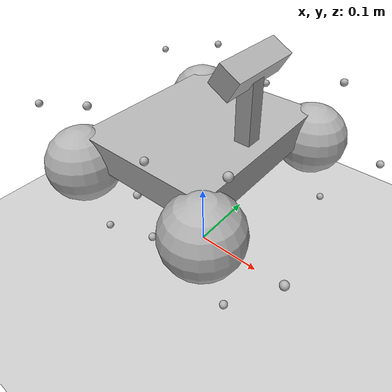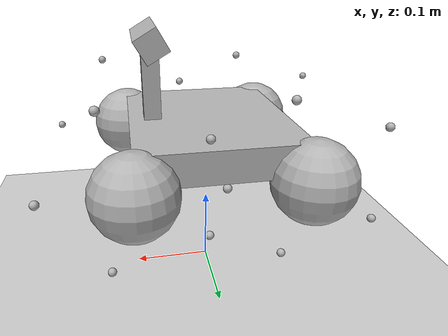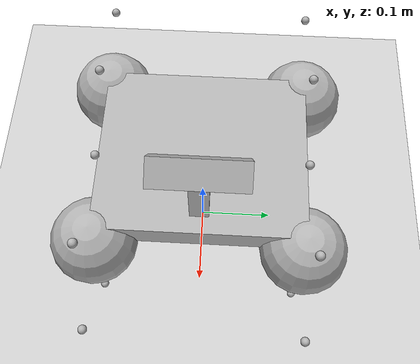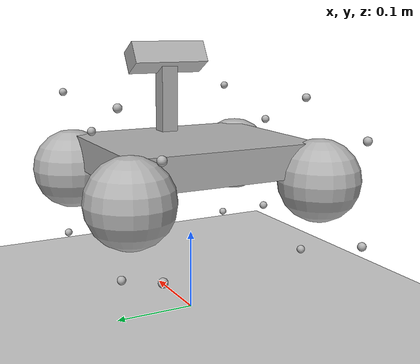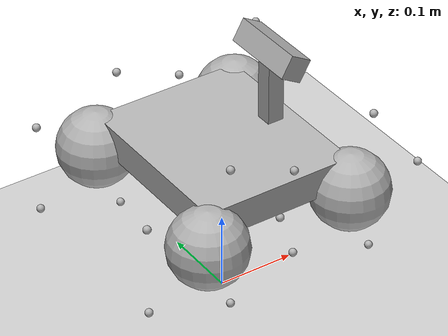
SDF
<sdf version='1.6'>
  <world name='default'>

    <gui>
      <plugin name="keyboard" filename="libKeyboardGUIPlugin-FIXED.so"/>
    </gui>

    <include>
      <uri>model://ground_plane</uri>
    </include>

    <include>
      <uri>model://sun</uri>
    </include>

    <include>
      <uri>model://ugv</uri>
      <pose>0 0 0.2 0 0 0</pose>
    </include>

    <gravity>0 0 -9.8</gravity>

    <physics name='default_physics' default='0' type='ode'>
      <max_step_size>0.001</max_step_size>
      <real_time_factor>1</real_time_factor>
      <real_time_update_rate>1000</real_time_update_rate>
    </physics>

    <gui fullscreen='0'>
      <camera name='user_camera'>
        <pose frame=''>5 -5 2 0 0.275643 2.35619</pose>
        <view_controller>orbit</view_controller>
        <projection_type>perspective</projection_type>
      </camera>
    </gui>

  </world>
</sdf>

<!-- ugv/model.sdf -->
<sdf version='1.6'>
  <model name='ugv'>

    <plugin name="controller" filename="libfsm_controller.so"/>

    <link name='chassis'>

      <pose frame=''>0 0 0 0 -0 0</pose>

      <inertial>
        <mass>0.71616</mass>
        <inertia>
          <ixx>0.003533056</ixx>
          <ixy>0</ixy>
          <ixz>0</ixz>
          <iyy>0.0024826880000000003</iyy>
          <iyz>0</iyz>
          <izz>0.005824768000000001</izz>
        </inertia>
      </inertial>

      <visual name='visual'>
        <geometry>
          <box>
            <size>0.2 0.24 0.04</size>
          </box>
        </geometry>
        <material>
          <ambient>0.3 0.3 0.3 1</ambient>
          <diffuse>0.7 0.7 0.7 1</diffuse>
          <specular>0.01 0.01 0.01 1</specular>
          <emissive>0 0 0 1</emissive>
        </material>
        <transparency>0</transparency>
      </visual>

      <collision name='collision'>
        <geometry>
          <box>
            <size>0.2 0.24 0.04</size>
          </box>
        </geometry>
      </collision>

      <sensor name='stereo_camera' type='multicamera'>

        <pose>0.07 0 0.115 0 0.5235987755982988 0</pose>

        <always_on>1</always_on>
        <update_rate>10</update_rate>

        <camera name="left">
          <save enabled="true">
            <path>/tmp/grass/low/left</path>
          </save>
          <horizontal_fov>1.047</horizontal_fov>
          <pose>0 0.05 0 0 0 0</pose>
          <image>
            <width>400</width>
            <height>400</height>
          </image>
          <clip>
            <near>0.1</near>
            <far>100</far>
          </clip>
        </camera>

        <camera name="right">
          <save enabled="true">
            <path>/tmp/grass/low/right</path>
          </save>
          <horizontal_fov>1.047</horizontal_fov>
          <pose>0 -0.05 0 0 0 0</pose>
          <image>
            <width>400</width>
            <height>400</height>
          </image>
          <clip>
            <near>0.1</near>
            <far>100</far>
          </clip>
        </camera>

      </sensor>

      <visual name='camera-visual'>
        <pose>0.07 0 0.115 0 0.5235987755982988 0</pose>
        <geometry>
          <box>
            <size>0.03 0.1 0.03</size>
          </box>
        </geometry>
        <material>
          <ambient>0.3 0.6 0.3 1</ambient>
          <diffuse>0.7 0.7 0.7 1</diffuse>
          <specular>0.01 0.01 0.01 1</specular>
          <emissive>0 0 0 1</emissive>
        </material>
        <transparency>0</transparency>
      </visual>

      <visual name='camera-pole-visual'>
        <pose>0.07 0 0.0575 0 -0 0</pose>
        <geometry>
          <box>
            <size>0.02142857142857143 0.02142857142857143 0.115</size>
          </box>
        </geometry>
        <material>
          <ambient>0.3 0.3 0.3 1</ambient>
          <diffuse>0.7 0.7 0.7 1</diffuse>
          <specular>0.01 0.01 0.01 1</specular>
          <emissive>0 0 0 1</emissive>
        </material>
        <transparency>0</transparency>
      </visual>

    </link>

    <link name='front-right-wheel'>

      <pose frame=''>0.1 -0.12 -0.025 0 -0 0</pose>

      <inertial>
        <mass>0.1953023432981655</mass>
        <inertia>
          <ixx>0.00019530234329816556</ixx>
          <ixy>0</ixy>
          <ixz>0</ixz>
          <iyy>0.00019530234329816556</iyy>
          <iyz>0</iyz>
          <izz>0.00019530234329816556</izz>
        </inertia>
      </inertial>

      <visual name='visual'>
        <geometry>
          <sphere>
            <radius>0.05</radius>
          </sphere>
        </geometry>
        <material>
          <ambient>0.3 0.3 0.6 1</ambient>
          <diffuse>0.7 0.7 0.7 1</diffuse>
          <specular>0.01 0.01 0.01 1</specular>
          <emissive>0 0 0 1</emissive>
        </material>
        <transparency>0</transparency>
      </visual>

      <collision name='collision'>
        <geometry>
          <sphere>
            <radius>0.05</radius>
          </sphere>
        </geometry>
      </collision>

      <visual name='front-right-wheel-leg1-visual'>
        <pose>0.030901699437494747 0 0.09510565162951536 0 -0 0</pose>
        <geometry>
          <sphere>
            <radius>0.005</radius>
          </sphere>
        </geometry>
        <material>
          <ambient>0.6 0.3 0.3 1</ambient>
          <diffuse>0.7 0.7 0.7 1</diffuse>
          <specular>0.01 0.01 0.01 1</specular>
          <emissive>0 0 0 1</emissive>
        </material>
        <transparency>0</transparency>
      </visual>

      <collision name='front-right-wheel-leg1-collision'>
        <pose>0.030901699437494747 0 0.09510565162951536 0 -0 0</pose>
        <geometry>
          <sphere>
            <radius>0.005</radius>
          </sphere>
        </geometry>
      </collision>

      <visual name='front-right-wheel-leg2-visual'>
        <pose>-0.08090169943749474 0 0.05877852522924733 0 -0 0</pose>
        <geometry>
          <sphere>
            <radius>0.005</radius>
          </sphere>
        </geometry>
        <material>
          <ambient>0.6 0.3 0.3 1</ambient>
          <diffuse>0.7 0.7 0.7 1</diffuse>
          <specular>0.01 0.01 0.01 1</specular>
          <emissive>0 0 0 1</emissive>
        </material>
        <transparency>0</transparency>
      </visual>

      <collision name='front-right-wheel-leg2-collision'>
        <pose>-0.08090169943749474 0 0.05877852522924733 0 -0 0</pose>
        <geometry>
          <sphere>
            <radius>0.005</radius>
          </sphere>
        </geometry>
      </collision>

      <visual name='front-right-wheel-leg3-visual'>
        <pose>-0.08090169943749476 0 -0.05877852522924731 0 -0 0</pose>
        <geometry>
          <sphere>
            <radius>0.005</radius>
          </sphere>
        </geometry>
        <material>
          <ambient>0.6 0.3 0.3 1</ambient>
          <diffuse>0.7 0.7 0.7 1</diffuse>
          <specular>0.01 0.01 0.01 1</specular>
          <emissive>0 0 0 1</emissive>
        </material>
        <transparency>0</transparency>
      </visual>

      <collision name='front-right-wheel-leg3-collision'>
        <pose>-0.08090169943749476 0 -0.05877852522924731 0 -0 0</pose>
        <geometry>
          <sphere>
            <radius>0.005</radius>
          </sphere>
        </geometry>
      </collision>

      <visual name='front-right-wheel-leg4-visual'>
        <pose>0.030901699437494726 0 -0.09510565162951537 0 -0 0</pose>
        <geometry>
          <sphere>
            <radius>0.005</radius>
          </sphere>
        </geometry>
        <material>
          <ambient>0.6 0.3 0.3 1</ambient>
          <diffuse>0.7 0.7 0.7 1</diffuse>
          <specular>0.01 0.01 0.01 1</specular>
          <emissive>0 0 0 1</emissive>
        </material>
        <transparency>0</transparency>
      </visual>

      <collision name='front-right-wheel-leg4-collision'>
        <pose>0.030901699437494726 0 -0.09510565162951537 0 -0 0</pose>
        <geometry>
          <sphere>
            <radius>0.005</radius>
          </sphere>
        </geometry>
      </collision>

      <visual name='front-right-wheel-leg5-visual'>
        <pose>0.1 0 -2.4492935982947065e-17 0 -0 0</pose>
        <geometry>
          <sphere>
            <radius>0.005</radius>
          </sphere>
        </geometry>
        <material>
          <ambient>0.6 0.3 0.3 1</ambient>
          <diffuse>0.7 0.7 0.7 1</diffuse>
          <specular>0.01 0.01 0.01 1</specular>
          <emissive>0 0 0 1</emissive>
        </material>
        <transparency>0</transparency>
      </visual>

      <collision name='front-right-wheel-leg5-collision'>
        <pose>0.1 0 -2.4492935982947065e-17 0 -0 0</pose>
        <geometry>
          <sphere>
            <radius>0.005</radius>
          </sphere>
        </geometry>
      </collision>

    </link>

    <link name='front-left-wheel'>

      <pose frame=''>0.1 0.12 -0.025 0 -0 0</pose>

      <inertial>
        <mass>0.1953023432981655</mass>
        <inertia>
          <ixx>0.00019530234329816556</ixx>
          <ixy>0</ixy>
          <ixz>0</ixz>
          <iyy>0.00019530234329816556</iyy>
          <iyz>0</iyz>
          <izz>0.00019530234329816556</izz>
        </inertia>
      </inertial>

      <visual name='visual'>
        <geometry>
          <sphere>
            <radius>0.05</radius>
          </sphere>
        </geometry>
        <material>
          <ambient>0.3 0.3 0.6 1</ambient>
          <diffuse>0.7 0.7 0.7 1</diffuse>
          <specular>0.01 0.01 0.01 1</specular>
          <emissive>0 0 0 1</emissive>
        </material>
        <transparency>0</transparency>
      </visual>

      <collision name='collision'>
        <geometry>
          <sphere>
            <radius>0.05</radius>
          </sphere>
        </geometry>
      </collision>

      <visual name='front-left-wheel-leg1-visual'>
        <pose>0.030901699437494747 0 0.09510565162951536 0 -0 0</pose>
        <geometry>
          <sphere>
            <radius>0.005</radius>
          </sphere>
        </geometry>
        <material>
          <ambient>0.6 0.3 0.3 1</ambient>
          <diffuse>0.7 0.7 0.7 1</diffuse>
          <specular>0.01 0.01 0.01 1</specular>
          <emissive>0 0 0 1</emissive>
        </material>
        <transparency>0</transparency>
      </visual>

      <collision name='front-left-wheel-leg1-collision'>
        <pose>0.030901699437494747 0 0.09510565162951536 0 -0 0</pose>
        <geometry>
          <sphere>
            <radius>0.005</radius>
          </sphere>
        </geometry>
      </collision>

      <visual name='front-left-wheel-leg2-visual'>
        <pose>-0.08090169943749474 0 0.05877852522924733 0 -0 0</pose>
        <geometry>
          <sphere>
            <radius>0.005</radius>
          </sphere>
        </geometry>
        <material>
          <ambient>0.6 0.3 0.3 1</ambient>
          <diffuse>0.7 0.7 0.7 1</diffuse>
          <specular>0.01 0.01 0.01 1</specular>
          <emissive>0 0 0 1</emissive>
        </material>
        <transparency>0</transparency>
      </visual>

      <collision name='front-left-wheel-leg2-collision'>
        <pose>-0.08090169943749474 0 0.05877852522924733 0 -0 0</pose>
        <geometry>
          <sphere>
            <radius>0.005</radius>
          </sphere>
        </geometry>
      </collision>

      <visual name='front-left-wheel-leg3-visual'>
        <pose>-0.08090169943749476 0 -0.05877852522924731 0 -0 0</pose>
        <geometry>
          <sphere>
            <radius>0.005</radius>
          </sphere>
        </geometry>
        <material>
          <ambient>0.6 0.3 0.3 1</ambient>
          <diffuse>0.7 0.7 0.7 1</diffuse>
          <specular>0.01 0.01 0.01 1</specular>
          <emissive>0 0 0 1</emissive>
        </material>
        <transparency>0</transparency>
      </visual>

      <collision name='front-left-wheel-leg3-collision'>
        <pose>-0.08090169943749476 0 -0.05877852522924731 0 -0 0</pose>
        <geometry>
          <sphere>
            <radius>0.005</radius>
          </sphere>
        </geometry>
      </collision>

      <visual name='front-left-wheel-leg4-visual'>
        <pose>0.030901699437494726 0 -0.09510565162951537 0 -0 0</pose>
        <geometry>
          <sphere>
            <radius>0.005</radius>
          </sphere>
        </geometry>
        <material>
          <ambient>0.6 0.3 0.3 1</ambient>
          <diffuse>0.7 0.7 0.7 1</diffuse>
          <specular>0.01 0.01 0.01 1</specular>
          <emissive>0 0 0 1</emissive>
        </material>
        <transparency>0</transparency>
      </visual>

      <collision name='front-left-wheel-leg4-collision'>
        <pose>0.030901699437494726 0 -0.09510565162951537 0 -0 0</pose>
        <geometry>
          <sphere>
            <radius>0.005</radius>
          </sphere>
        </geometry>
      </collision>

      <visual name='front-left-wheel-leg5-visual'>
        <pose>0.1 0 -2.4492935982947065e-17 0 -0 0</pose>
        <geometry>
          <sphere>
            <radius>0.005</radius>
          </sphere>
        </geometry>
        <material>
          <ambient>0.6 0.3 0.3 1</ambient>
          <diffuse>0.7 0.7 0.7 1</diffuse>
          <specular>0.01 0.01 0.01 1</specular>
          <emissive>0 0 0 1</emissive>
        </material>
        <transparency>0</transparency>
      </visual>

      <collision name='front-left-wheel-leg5-collision'>
        <pose>0.1 0 -2.4492935982947065e-17 0 -0 0</pose>
        <geometry>
          <sphere>
            <radius>0.005</radius>
          </sphere>
        </geometry>
      </collision>

    </link>

    <link name='back-right-wheel'>

      <pose frame=''>-0.1 -0.12 -0.025 0 -0 0</pose>

      <inertial>
        <mass>0.1953023432981655</mass>
        <inertia>
          <ixx>0.00019530234329816556</ixx>
          <ixy>0</ixy>
          <ixz>0</ixz>
          <iyy>0.00019530234329816556</iyy>
          <iyz>0</iyz>
          <izz>0.00019530234329816556</izz>
        </inertia>
      </inertial>

      <visual name='visual'>
        <geometry>
          <sphere>
            <radius>0.05</radius>
          </sphere>
        </geometry>
        <material>
          <ambient>0.3 0.3 0.6 1</ambient>
          <diffuse>0.7 0.7 0.7 1</diffuse>
          <specular>0.01 0.01 0.01 1</specular>
          <emissive>0 0 0 1</emissive>
        </material>
        <transparency>0</transparency>
      </visual>

      <collision name='collision'>
        <geometry>
          <sphere>
            <radius>0.05</radius>
          </sphere>
        </geometry>
      </collision>

      <visual name='back-right-wheel-leg1-visual'>
        <pose>0.030901699437494747 0 0.09510565162951536 0 -0 0</pose>
        <geometry>
          <sphere>
            <radius>0.005</radius>
          </sphere>
        </geometry>
        <material>
          <ambient>0.6 0.3 0.3 1</ambient>
          <diffuse>0.7 0.7 0.7 1</diffuse>
          <specular>0.01 0.01 0.01 1</specular>
          <emissive>0 0 0 1</emissive>
        </material>
        <transparency>0</transparency>
      </visual>

      <collision name='back-right-wheel-leg1-collision'>
        <pose>0.030901699437494747 0 0.09510565162951536 0 -0 0</pose>
        <geometry>
          <sphere>
            <radius>0.005</radius>
          </sphere>
        </geometry>
      </collision>

      <visual name='back-right-wheel-leg2-visual'>
        <pose>-0.08090169943749474 0 0.05877852522924733 0 -0 0</pose>
        <geometry>
          <sphere>
            <radius>0.005</radius>
          </sphere>
        </geometry>
        <material>
          <ambient>0.6 0.3 0.3 1</ambient>
          <diffuse>0.7 0.7 0.7 1</diffuse>
          <specular>0.01 0.01 0.01 1</specular>
          <emissive>0 0 0 1</emissive>
        </material>
        <transparency>0</transparency>
      </visual>

      <collision name='back-right-wheel-leg2-collision'>
        <pose>-0.08090169943749474 0 0.05877852522924733 0 -0 0</pose>
        <geometry>
          <sphere>
            <radius>0.005</radius>
          </sphere>
        </geometry>
      </collision>

      <visual name='back-right-wheel-leg3-visual'>
        <pose>-0.08090169943749476 0 -0.05877852522924731 0 -0 0</pose>
        <geometry>
          <sphere>
            <radius>0.005</radius>
          </sphere>
        </geometry>
        <material>
          <ambient>0.6 0.3 0.3 1</ambient>
          <diffuse>0.7 0.7 0.7 1</diffuse>
          <specular>0.01 0.01 0.01 1</specular>
          <emissive>0 0 0 1</emissive>
        </material>
        <transparency>0</transparency>
      </visual>

      <collision name='back-right-wheel-leg3-collision'>
        <pose>-0.08090169943749476 0 -0.05877852522924731 0 -0 0</pose>
        <geometry>
          <sphere>
            <radius>0.005</radius>
          </sphere>
        </geometry>
      </collision>

      <visual name='back-right-wheel-leg4-visual'>
        <pose>0.030901699437494726 0 -0.09510565162951537 0 -0 0</pose>
        <geometry>
          <sphere>
            <radius>0.005</radius>
          </sphere>
        </geometry>
        <material>
          <ambient>0.6 0.3 0.3 1</ambient>
          <diffuse>0.7 0.7 0.7 1</diffuse>
          <specular>0.01 0.01 0.01 1</specular>
          <emissive>0 0 0 1</emissive>
        </material>
        <transparency>0</transparency>
      </visual>

      <collision name='back-right-wheel-leg4-collision'>
        <pose>0.030901699437494726 0 -0.09510565162951537 0 -0 0</pose>
        <geometry>
          <sphere>
            <radius>0.005</radius>
          </sphere>
        </geometry>
      </collision>

      <visual name='back-right-wheel-leg5-visual'>
        <pose>0.1 0 -2.4492935982947065e-17 0 -0 0</pose>
        <geometry>
          <sphere>
            <radius>0.005</radius>
          </sphere>
        </geometry>
        <material>
          <ambient>0.6 0.3 0.3 1</ambient>
          <diffuse>0.7 0.7 0.7 1</diffuse>
          <specular>0.01 0.01 0.01 1</specular>
          <emissive>0 0 0 1</emissive>
        </material>
        <transparency>0</transparency>
      </visual>

      <collision name='back-right-wheel-leg5-collision'>
        <pose>0.1 0 -2.4492935982947065e-17 0 -0 0</pose>
        <geometry>
          <sphere>
            <radius>0.005</radius>
          </sphere>
        </geometry>
      </collision>

    </link>

    <link name='back-left-wheel'>

      <pose frame=''>-0.1 0.12 -0.025 0 -0 0</pose>

      <inertial>
        <mass>0.1953023432981655</mass>
        <inertia>
          <ixx>0.00019530234329816556</ixx>
          <ixy>0</ixy>
          <ixz>0</ixz>
          <iyy>0.00019530234329816556</iyy>
          <iyz>0</iyz>
          <izz>0.00019530234329816556</izz>
        </inertia>
      </inertial>

      <visual name='visual'>
        <geometry>
          <sphere>
            <radius>0.05</radius>
          </sphere>
        </geometry>
        <material>
          <ambient>0.3 0.3 0.6 1</ambient>
          <diffuse>0.7 0.7 0.7 1</diffuse>
          <specular>0.01 0.01 0.01 1</specular>
          <emissive>0 0 0 1</emissive>
        </material>
        <transparency>0</transparency>
      </visual>

      <collision name='collision'>
        <geometry>
          <sphere>
            <radius>0.05</radius>
          </sphere>
        </geometry>
      </collision>

      <visual name='back-left-wheel-leg1-visual'>
        <pose>0.030901699437494747 0 0.09510565162951536 0 -0 0</pose>
        <geometry>
          <sphere>
            <radius>0.005</radius>
          </sphere>
        </geometry>
        <material>
          <ambient>0.6 0.3 0.3 1</ambient>
          <diffuse>0.7 0.7 0.7 1</diffuse>
          <specular>0.01 0.01 0.01 1</specular>
          <emissive>0 0 0 1</emissive>
        </material>
        <transparency>0</transparency>
      </visual>

      <collision name='back-left-wheel-leg1-collision'>
        <pose>0.030901699437494747 0 0.09510565162951536 0 -0 0</pose>
        <geometry>
          <sphere>
            <radius>0.005</radius>
          </sphere>
        </geometry>
      </collision>

      <visual name='back-left-wheel-leg2-visual'>
        <pose>-0.08090169943749474 0 0.05877852522924733 0 -0 0</pose>
        <geometry>
          <sphere>
            <radius>0.005</radius>
          </sphere>
        </geometry>
        <material>
          <ambient>0.6 0.3 0.3 1</ambient>
          <diffuse>0.7 0.7 0.7 1</diffuse>
          <specular>0.01 0.01 0.01 1</specular>
          <emissive>0 0 0 1</emissive>
        </material>
        <transparency>0</transparency>
      </visual>

      <collision name='back-left-wheel-leg2-collision'>
        <pose>-0.08090169943749474 0 0.05877852522924733 0 -0 0</pose>
        <geometry>
          <sphere>
            <radius>0.005</radius>
          </sphere>
        </geometry>
      </collision>

      <visual name='back-left-wheel-leg3-visual'>
        <pose>-0.08090169943749476 0 -0.05877852522924731 0 -0 0</pose>
        <geometry>
          <sphere>
            <radius>0.005</radius>
          </sphere>
        </geometry>
        <material>
          <ambient>0.6 0.3 0.3 1</ambient>
          <diffuse>0.7 0.7 0.7 1</diffuse>
          <specular>0.01 0.01 0.01 1</specular>
          <emissive>0 0 0 1</emissive>
        </material>
        <transparency>0</transparency>
      </visual>

      <collision name='back-left-wheel-leg3-collision'>
        <pose>-0.08090169943749476 0 -0.05877852522924731 0 -0 0</pose>
        <geometry>
          <sphere>
            <radius>0.005</radius>
          </sphere>
        </geometry>
      </collision>

      <visual name='back-left-wheel-leg4-visual'>
        <pose>0.030901699437494726 0 -0.09510565162951537 0 -0 0</pose>
        <geometry>
          <sphere>
            <radius>0.005</radius>
          </sphere>
        </geometry>
        <material>
          <ambient>0.6 0.3 0.3 1</ambient>
          <diffuse>0.7 0.7 0.7 1</diffuse>
          <specular>0.01 0.01 0.01 1</specular>
          <emissive>0 0 0 1</emissive>
        </material>
        <transparency>0</transparency>
      </visual>

      <collision name='back-left-wheel-leg4-collision'>
        <pose>0.030901699437494726 0 -0.09510565162951537 0 -0 0</pose>
        <geometry>
          <sphere>
            <radius>0.005</radius>
          </sphere>
        </geometry>
      </collision>

      <visual name='back-left-wheel-leg5-visual'>
        <pose>0.1 0 -2.4492935982947065e-17 0 -0 0</pose>
        <geometry>
          <sphere>
            <radius>0.005</radius>
          </sphere>
        </geometry>
        <material>
          <ambient>0.6 0.3 0.3 1</ambient>
          <diffuse>0.7 0.7 0.7 1</diffuse>
          <specular>0.01 0.01 0.01 1</specular>
          <emissive>0 0 0 1</emissive>
        </material>
        <transparency>0</transparency>
      </visual>

      <collision name='back-left-wheel-leg5-collision'>
        <pose>0.1 0 -2.4492935982947065e-17 0 -0 0</pose>
        <geometry>
          <sphere>
            <radius>0.005</radius>
          </sphere>
        </geometry>
      </collision>

    </link>

    <joint name='front-right-wheel-joint' type='revolute'>
      <parent>chassis</parent>
      <child>front-right-wheel</child>
      <pose frame=''>0 0 0 0 -0 0</pose>
      <axis>
        <xyz>0 1 0</xyz>
      </axis>
    </joint>

    <joint name='front-left-wheel-joint' type='revolute'>
      <parent>chassis</parent>
      <child>front-left-wheel</child>
      <pose frame=''>0 0 0 0 -0 0</pose>
      <axis>
        <xyz>0 1 0</xyz>
      </axis>
    </joint>

    <joint name='back-right-wheel-joint' type='revolute'>
      <parent>chassis</parent>
      <child>back-right-wheel</child>
      <pose frame=''>0 0 0 0 -0 0</pose>
      <axis>
        <xyz>0 1 0</xyz>
      </axis>
    </joint>

    <joint name='back-left-wheel-joint' type='revolute'>
      <parent>chassis</parent>
      <child>back-left-wheel</child>
      <pose frame=''>0 0 0 0 -0 0</pose>
      <axis>
        <xyz>0 1 0</xyz>
      </axis>
    </joint>

  </model>
</sdf>
